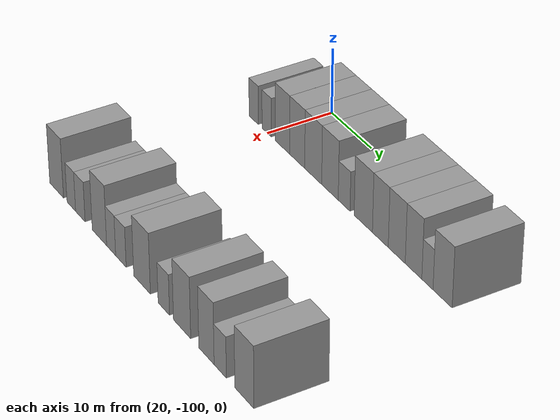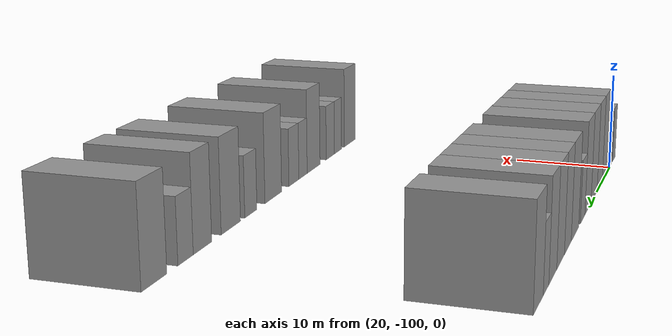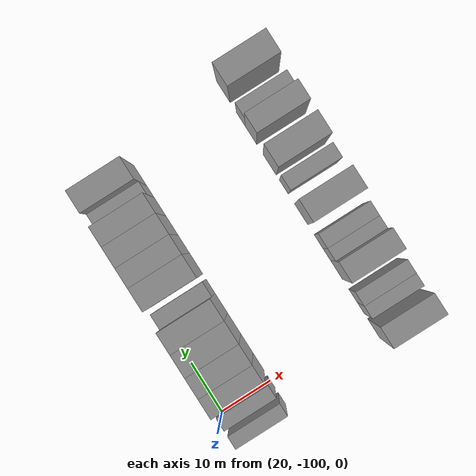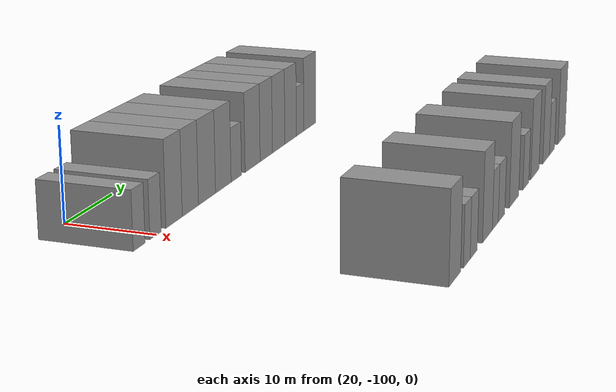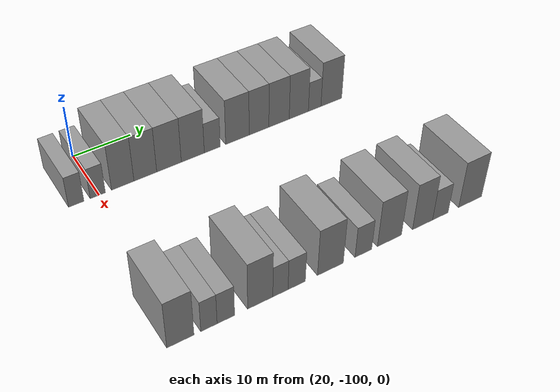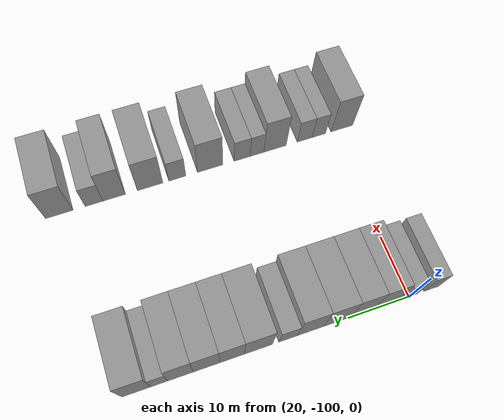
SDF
<sdf version="1.6">
 <world name="default">
  <model name="building_29">
   <static>1</static>
   <pose>25.0000 -103.6696 0 0.000000 0.000000 0.000000</pose>
   <link name="link">
    <pose>0 0 3.00 0 0 0</pose>
    <collision name="collision"><geometry><box><size>10.0000 2.4709 6.0000</size></box></geometry></collision>
    <visual name="visual">
     <cast_shadows>0</cast_shadows>
     <geometry><box><size>10.0000 2.4709 6.0000</size></box></geometry>
     <material>
      <script>
       <uri>model://grey_wall/materials/scripts</uri>
       <uri>model://grey_wall/materials/textures</uri>
       <name>vrc/grey_wall</name>
      </script>
     </material>
    </visual>
   </link>
  </model>
  <model name="building_30">
   <static>1</static>
   <pose>25.0000 -100.1896 0 0.000000 0.000000 0.000000</pose>
   <link name="link">
    <pose>0 0 3.00 0 0 0</pose>
    <collision name="collision"><geometry><box><size>10.0000 2.4890 6.0000</size></box></geometry></collision>
    <visual name="visual">
     <cast_shadows>0</cast_shadows>
     <geometry><box><size>10.0000 2.4890 6.0000</size></box></geometry>
     <material>
      <script>
       <uri>model://grey_wall/materials/scripts</uri>
       <uri>model://grey_wall/materials/textures</uri>
       <name>vrc/grey_wall</name>
      </script>
     </material>
    </visual>
   </link>
  </model>
  <model name="building_31">
   <static>1</static>
   <pose>25.0000 -96.0738 0 0.000000 0.000000 0.000000</pose>
   <link name="link">
    <pose>0 0 4.50 0 0 0</pose>
    <collision name="collision"><geometry><box><size>10.0000 3.7427 9.0000</size></box></geometry></collision>
    <visual name="visual">
     <cast_shadows>0</cast_shadows>
     <geometry><box><size>10.0000 3.7427 9.0000</size></box></geometry>
     <material>
      <script>
       <uri>model://grey_wall/materials/scripts</uri>
       <uri>model://grey_wall/materials/textures</uri>
       <name>vrc/grey_wall</name>
      </script>
     </material>
    </visual>
   </link>
  </model>
  <model name="building_32">
   <static>1</static>
   <pose>25.0000 -92.2656 0 0.000000 0.000000 0.000000</pose>
   <link name="link">
    <pose>0 0 4.50 0 0 0</pose>
    <collision name="collision"><geometry><box><size>10.0000 3.8736 9.0000</size></box></geometry></collision>
    <visual name="visual">
     <cast_shadows>0</cast_shadows>
     <geometry><box><size>10.0000 3.8736 9.0000</size></box></geometry>
     <material>
      <script>
       <uri>model://grey_wall/materials/scripts</uri>
       <uri>model://grey_wall/materials/textures</uri>
       <name>vrc/grey_wall</name>
      </script>
     </material>
    </visual>
   </link>
  </model>
  <model name="building_33">
   <static>1</static>
   <pose>25.0000 -88.1891 0 0.000000 0.000000 0.000000</pose>
   <link name="link">
    <pose>0 0 4.50 0 0 0</pose>
    <collision name="collision"><geometry><box><size>10.0000 4.2794 9.0000</size></box></geometry></collision>
    <visual name="visual">
     <cast_shadows>0</cast_shadows>
     <geometry><box><size>10.0000 4.2794 9.0000</size></box></geometry>
     <material>
      <script>
       <uri>model://grey_wall/materials/scripts</uri>
       <uri>model://grey_wall/materials/textures</uri>
       <name>vrc/grey_wall</name>
      </script>
     </material>
    </visual>
   </link>
  </model>
  <model name="building_34">
   <static>1</static>
   <pose>25.0000 -84.0061 0 0.000000 0.000000 0.000000</pose>
   <link name="link">
    <pose>0 0 4.50 0 0 0</pose>
    <collision name="collision"><geometry><box><size>10.0000 4.0865 9.0000</size></box></geometry></collision>
    <visual name="visual">
     <cast_shadows>0</cast_shadows>
     <geometry><box><size>10.0000 4.0865 9.0000</size></box></geometry>
     <material>
      <script>
       <uri>model://grey_wall/materials/scripts</uri>
       <uri>model://grey_wall/materials/textures</uri>
       <name>vrc/grey_wall</name>
      </script>
     </material>
    </visual>
   </link>
  </model>
  <model name="building_35">
   <static>1</static>
   <pose>25.0000 -80.5269 0 0.000000 0.000000 0.000000</pose>
   <link name="link">
    <pose>0 0 3.00 0 0 0</pose>
    <collision name="collision"><geometry><box><size>10.0000 2.8718 6.0000</size></box></geometry></collision>
    <visual name="visual">
     <cast_shadows>0</cast_shadows>
     <geometry><box><size>10.0000 2.8718 6.0000</size></box></geometry>
     <material>
      <script>
       <uri>model://grey_wall/materials/scripts</uri>
       <uri>model://grey_wall/materials/textures</uri>
       <name>vrc/grey_wall</name>
      </script>
     </material>
    </visual>
   </link>
  </model>
  <model name="building_36">
   <static>1</static>
   <pose>25.0000 -75.9155 0 0.000000 0.000000 0.000000</pose>
   <link name="link">
    <pose>0 0 4.50 0 0 0</pose>
    <collision name="collision"><geometry><box><size>10.0000 4.3510 9.0000</size></box></geometry></collision>
    <visual name="visual">
     <cast_shadows>0</cast_shadows>
     <geometry><box><size>10.0000 4.3510 9.0000</size></box></geometry>
     <material>
      <script>
       <uri>model://grey_wall/materials/scripts</uri>
       <uri>model://grey_wall/materials/textures</uri>
       <name>vrc/grey_wall</name>
      </script>
     </material>
    </visual>
   </link>
  </model>
  <model name="building_37">
   <static>1</static>
   <pose>25.0000 -71.8836 0 0.000000 0.000000 0.000000</pose>
   <link name="link">
    <pose>0 0 4.50 0 0 0</pose>
    <collision name="collision"><geometry><box><size>10.0000 3.7129 9.0000</size></box></geometry></collision>
    <visual name="visual">
     <cast_shadows>0</cast_shadows>
     <geometry><box><size>10.0000 3.7129 9.0000</size></box></geometry>
     <material>
      <script>
       <uri>model://grey_wall/materials/scripts</uri>
       <uri>model://grey_wall/materials/textures</uri>
       <name>vrc/grey_wall</name>
      </script>
     </material>
    </visual>
   </link>
  </model>
  <model name="building_38">
   <static>1</static>
   <pose>25.0000 -68.0670 0 0.000000 0.000000 0.000000</pose>
   <link name="link">
    <pose>0 0 4.50 0 0 0</pose>
    <collision name="collision"><geometry><box><size>10.0000 3.9202 9.0000</size></box></geometry></collision>
    <visual name="visual">
     <cast_shadows>0</cast_shadows>
     <geometry><box><size>10.0000 3.9202 9.0000</size></box></geometry>
     <material>
      <script>
       <uri>model://grey_wall/materials/scripts</uri>
       <uri>model://grey_wall/materials/textures</uri>
       <name>vrc/grey_wall</name>
      </script>
     </material>
    </visual>
   </link>
  </model>
  <model name="building_39">
   <static>1</static>
   <pose>25.0000 -64.2276 0 0.000000 0.000000 0.000000</pose>
   <link name="link">
    <pose>0 0 4.50 0 0 0</pose>
    <collision name="collision"><geometry><box><size>10.0000 3.7588 9.0000</size></box></geometry></collision>
    <visual name="visual">
     <cast_shadows>0</cast_shadows>
     <geometry><box><size>10.0000 3.7588 9.0000</size></box></geometry>
     <material>
      <script>
       <uri>model://grey_wall/materials/scripts</uri>
       <uri>model://grey_wall/materials/textures</uri>
       <name>vrc/grey_wall</name>
      </script>
     </material>
    </visual>
   </link>
  </model>
  <model name="building_40">
   <static>1</static>
   <pose>25.0000 -61.0948 0 0.000000 0.000000 0.000000</pose>
   <link name="link">
    <pose>0 0 3.00 0 0 0</pose>
    <collision name="collision"><geometry><box><size>10.0000 2.5068 6.0000</size></box></geometry></collision>
    <visual name="visual">
     <cast_shadows>0</cast_shadows>
     <geometry><box><size>10.0000 2.5068 6.0000</size></box></geometry>
     <material>
      <script>
       <uri>model://grey_wall/materials/scripts</uri>
       <uri>model://grey_wall/materials/textures</uri>
       <name>vrc/grey_wall</name>
      </script>
     </material>
    </visual>
   </link>
  </model>
  <model name="building_41">
   <static>1</static>
   <pose>25.0000 -57.7386 0 0.000000 0.000000 0.000000</pose>
   <link name="link">
    <pose>0 0 4.50 0 0 0</pose>
    <collision name="collision"><geometry><box><size>10.0000 4.2054 9.0000</size></box></geometry></collision>
    <visual name="visual">
     <cast_shadows>0</cast_shadows>
     <geometry><box><size>10.0000 4.2054 9.0000</size></box></geometry>
     <material>
      <script>
       <uri>model://grey_wall/materials/scripts</uri>
       <uri>model://grey_wall/materials/textures</uri>
       <name>vrc/grey_wall</name>
      </script>
     </material>
    </visual>
   </link>
  </model>
  <model name="building_126">
   <static>1</static>
   <pose>55.0000 -101.9450 0 0.000000 0.000000 0.000000</pose>
   <link name="link">
    <pose>0 0 4.50 0 0 0</pose>
    <collision name="collision"><geometry><box><size>10.0000 3.9810 9.0000</size></box></geometry></collision>
    <visual name="visual">
     <cast_shadows>0</cast_shadows>
     <geometry><box><size>10.0000 3.9810 9.0000</size></box></geometry>
     <material>
      <script>
       <uri>model://grey_wall/materials/scripts</uri>
       <uri>model://grey_wall/materials/textures</uri>
       <name>vrc/grey_wall</name>
      </script>
     </material>
    </visual>
   </link>
  </model>
  <model name="building_127">
   <static>1</static>
   <pose>55.0000 -97.7341 0 0.000000 0.000000 0.000000</pose>
   <link name="link">
    <pose>0 0 3.00 0 0 0</pose>
    <collision name="collision"><geometry><box><size>10.0000 2.4408 6.0000</size></box></geometry></collision>
    <visual name="visual">
     <cast_shadows>0</cast_shadows>
     <geometry><box><size>10.0000 2.4408 6.0000</size></box></geometry>
     <material>
      <script>
       <uri>model://grey_wall/materials/scripts</uri>
       <uri>model://grey_wall/materials/textures</uri>
       <name>vrc/grey_wall</name>
      </script>
     </material>
    </visual>
   </link>
  </model>
  <model name="building_128">
   <static>1</static>
   <pose>55.0000 -95.1772 0 0.000000 0.000000 0.000000</pose>
   <link name="link">
    <pose>0 0 3.00 0 0 0</pose>
    <collision name="collision"><geometry><box><size>10.0000 2.6729 6.0000</size></box></geometry></collision>
    <visual name="visual">
     <cast_shadows>0</cast_shadows>
     <geometry><box><size>10.0000 2.6729 6.0000</size></box></geometry>
     <material>
      <script>
       <uri>model://grey_wall/materials/scripts</uri>
       <uri>model://grey_wall/materials/textures</uri>
       <name>vrc/grey_wall</name>
      </script>
     </material>
    </visual>
   </link>
  </model>
  <model name="building_129">
   <static>1</static>
   <pose>55.0000 -89.8625 0 0.000000 0.000000 0.000000</pose>
   <link name="link">
    <pose>0 0 4.50 0 0 0</pose>
    <collision name="collision"><geometry><box><size>10.0000 3.9565 9.0000</size></box></geometry></collision>
    <visual name="visual">
     <cast_shadows>0</cast_shadows>
     <geometry><box><size>10.0000 3.9565 9.0000</size></box></geometry>
     <material>
      <script>
       <uri>model://grey_wall/materials/scripts</uri>
       <uri>model://grey_wall/materials/textures</uri>
       <name>vrc/grey_wall</name>
      </script>
     </material>
    </visual>
   </link>
  </model>
  <model name="building_130">
   <static>1</static>
   <pose>55.0000 -86.6644 0 0.000000 0.000000 0.000000</pose>
   <link name="link">
    <pose>0 0 3.00 0 0 0</pose>
    <collision name="collision"><geometry><box><size>10.0000 2.4396 6.0000</size></box></geometry></collision>
    <visual name="visual">
     <cast_shadows>0</cast_shadows>
     <geometry><box><size>10.0000 2.4396 6.0000</size></box></geometry>
     <material>
      <script>
       <uri>model://grey_wall/materials/scripts</uri>
       <uri>model://grey_wall/materials/textures</uri>
       <name>vrc/grey_wall</name>
      </script>
     </material>
    </visual>
   </link>
  </model>
  <model name="building_131">
   <static>1</static>
   <pose>55.0000 -84.0355 0 0.000000 0.000000 0.000000</pose>
   <link name="link">
    <pose>0 0 3.00 0 0 0</pose>
    <collision name="collision"><geometry><box><size>10.0000 2.8183 6.0000</size></box></geometry></collision>
    <visual name="visual">
     <cast_shadows>0</cast_shadows>
     <geometry><box><size>10.0000 2.8183 6.0000</size></box></geometry>
     <material>
      <script>
       <uri>model://grey_wall/materials/scripts</uri>
       <uri>model://grey_wall/materials/textures</uri>
       <name>vrc/grey_wall</name>
      </script>
     </material>
    </visual>
   </link>
  </model>
  <model name="building_132">
   <static>1</static>
   <pose>55.0000 -78.4525 0 0.000000 0.000000 0.000000</pose>
   <link name="link">
    <pose>0 0 4.50 0 0 0</pose>
    <collision name="collision"><geometry><box><size>10.0000 4.3476 9.0000</size></box></geometry></collision>
    <visual name="visual">
     <cast_shadows>0</cast_shadows>
     <geometry><box><size>10.0000 4.3476 9.0000</size></box></geometry>
     <material>
      <script>
       <uri>model://grey_wall/materials/scripts</uri>
       <uri>model://grey_wall/materials/textures</uri>
       <name>vrc/grey_wall</name>
      </script>
     </material>
    </visual>
   </link>
  </model>
  <model name="building_133">
   <static>1</static>
   <pose>55.0000 -72.8272 0 0.000000 0.000000 0.000000</pose>
   <link name="link">
    <pose>0 0 3.00 0 0 0</pose>
    <collision name="collision"><geometry><box><size>10.0000 2.9031 6.0000</size></box></geometry></collision>
    <visual name="visual">
     <cast_shadows>0</cast_shadows>
     <geometry><box><size>10.0000 2.9031 6.0000</size></box></geometry>
     <material>
      <script>
       <uri>model://grey_wall/materials/scripts</uri>
       <uri>model://grey_wall/materials/textures</uri>
       <name>vrc/grey_wall</name>
      </script>
     </material>
    </visual>
   </link>
  </model>
  <model name="building_134">
   <static>1</static>
   <pose>55.0000 -68.2316 0 0.000000 0.000000 0.000000</pose>
   <link name="link">
    <pose>0 0 4.50 0 0 0</pose>
    <collision name="collision"><geometry><box><size>10.0000 4.2879 9.0000</size></box></geometry></collision>
    <visual name="visual">
     <cast_shadows>0</cast_shadows>
     <geometry><box><size>10.0000 4.2879 9.0000</size></box></geometry>
     <material>
      <script>
       <uri>model://grey_wall/materials/scripts</uri>
       <uri>model://grey_wall/materials/textures</uri>
       <name>vrc/grey_wall</name>
      </script>
     </material>
    </visual>
   </link>
  </model>
  <model name="building_135">
   <static>1</static>
   <pose>55.0000 -62.2344 0 0.000000 0.000000 0.000000</pose>
   <link name="link">
    <pose>0 0 4.50 0 0 0</pose>
    <collision name="collision"><geometry><box><size>10.0000 3.7065 9.0000</size></box></geometry></collision>
    <visual name="visual">
     <cast_shadows>0</cast_shadows>
     <geometry><box><size>10.0000 3.7065 9.0000</size></box></geometry>
     <material>
      <script>
       <uri>model://grey_wall/materials/scripts</uri>
       <uri>model://grey_wall/materials/textures</uri>
       <name>vrc/grey_wall</name>
      </script>
     </material>
    </visual>
   </link>
  </model>
  <model name="building_136">
   <static>1</static>
   <pose>55.0000 -58.9238 0 0.000000 0.000000 0.000000</pose>
   <link name="link">
    <pose>0 0 3.00 0 0 0</pose>
    <collision name="collision"><geometry><box><size>10.0000 2.9149 6.0000</size></box></geometry></collision>
    <visual name="visual">
     <cast_shadows>0</cast_shadows>
     <geometry><box><size>10.0000 2.9149 6.0000</size></box></geometry>
     <material>
      <script>
       <uri>model://grey_wall/materials/scripts</uri>
       <uri>model://grey_wall/materials/textures</uri>
       <name>vrc/grey_wall</name>
      </script>
     </material>
    </visual>
   </link>
  </model>
  <model name="building_137">
   <static>1</static>
   <pose>55.0000 -53.2517 0 0.000000 0.000000 0.000000</pose>
   <link name="link">
    <pose>0 0 4.50 0 0 0</pose>
    <collision name="collision"><geometry><box><size>10.0000 4.4294 9.0000</size></box></geometry></collision>
    <visual name="visual">
     <cast_shadows>0</cast_shadows>
     <geometry><box><size>10.0000 4.4294 9.0000</size></box></geometry>
     <material>
      <script>
       <uri>model://grey_wall/materials/scripts</uri>
       <uri>model://grey_wall/materials/textures</uri>
       <name>vrc/grey_wall</name>
      </script>
     </material>
    </visual>
   </link>
  </model>
 </world>
</sdf>
